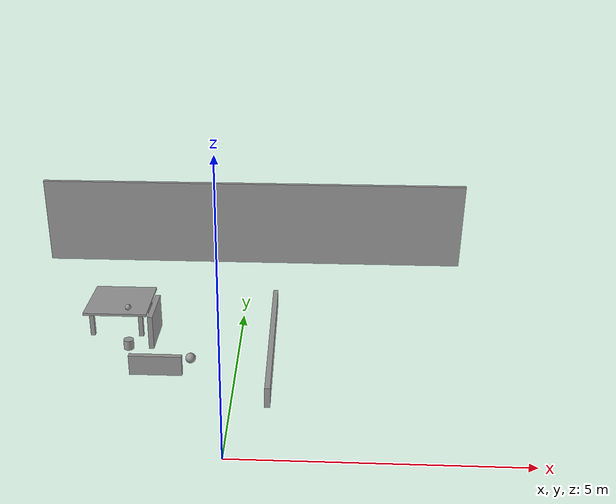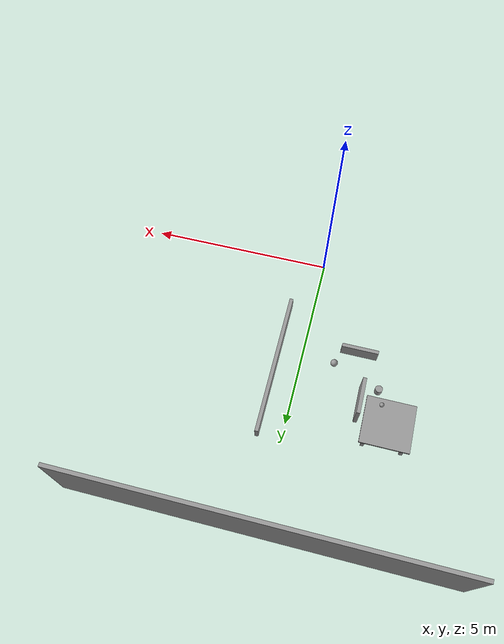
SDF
<sdf version="1.5">
 <world name="room1">
  <model name="wall2">
   <pose>0 7.95 1 0 0 0</pose>
   <static>1</static>
   <link name="link">
    <inertial>
     <mass>1</mass>
     <inertia><ixx>1</ixx><ixy>0</ixy><ixz>0</ixz><iyy>1</iyy><iyz>0</iyz><izz>1</izz></inertia>
    </inertial>
    <collision name="collision"><geometry><box><size>10 0.1 2</size></box></geometry></collision>
    <visual name="visual">
     <geometry><box><size>10 0.1 2</size></box></geometry>
     <material>
      <script><uri>file://media/materials/scripts/gazebo.material</uri><name>Gazebo/Grey</name></script>
     </material>
    </visual>
    <gravity>0</gravity>
   </link>
  </model>
  <model name="table_leg1">
   <pose>-2.045 4.045 0.25 0 0 0</pose>
   <static>1</static>
   <link name="link">
    <inertial>
     <mass>1</mass>
     <inertia><ixx>1</ixx><ixy>0</ixy><ixz>0</ixz><iyy>1</iyy><iyz>0</iyz><izz>1</izz></inertia>
    </inertial>
    <collision name="collision"><geometry><box><size>0.09 0.09 0.5</size></box></geometry></collision>
    <visual name="visual">
     <geometry><box><size>0.09 0.09 0.5</size></box></geometry>
     <material>
      <script><uri>file://media/materials/scripts/gazebo.material</uri><name>Gazebo/Grey</name></script>
     </material>
    </visual>
    <gravity>0</gravity>
   </link>
  </model>
  <model name="table_leg2">
   <pose>-3.045 4.045 0.25 0 0 0</pose>
   <static>1</static>
   <link name="link">
    <inertial>
     <mass>1</mass>
     <inertia><ixx>1</ixx><ixy>0</ixy><ixz>0</ixz><iyy>1</iyy><iyz>0</iyz><izz>1</izz></inertia>
    </inertial>
    <collision name="collision"><geometry><box><size>0.09 0.09 0.5</size></box></geometry></collision>
    <visual name="visual">
     <geometry><box><size>0.09 0.09 0.5</size></box></geometry>
     <material>
      <script><uri>file://media/materials/scripts/gazebo.material</uri><name>Gazebo/Grey</name></script>
     </material>
    </visual>
    <gravity>0</gravity>
   </link>
  </model>
  <model name="table_leg3">
   <pose>-2.045 5.045 0.25 0 0 0</pose>
   <static>1</static>
   <link name="link">
    <inertial>
     <mass>1</mass>
     <inertia><ixx>1</ixx><ixy>0</ixy><ixz>0</ixz><iyy>1</iyy><iyz>0</iyz><izz>1</izz></inertia>
    </inertial>
    <collision name="collision"><geometry><box><size>0.09 0.09 0.5</size></box></geometry></collision>
    <visual name="visual">
     <geometry><box><size>0.09 0.09 0.5</size></box></geometry>
     <material>
      <script><uri>file://media/materials/scripts/gazebo.material</uri><name>Gazebo/Grey</name></script>
     </material>
    </visual>
    <gravity>0</gravity>
   </link>
  </model>
  <model name="table_leg4">
   <pose>-3.045 5.045 0.25 0 0 0</pose>
   <static>1</static>
   <link name="link">
    <inertial>
     <mass>1</mass>
     <inertia><ixx>1</ixx><ixy>0</ixy><ixz>0</ixz><iyy>1</iyy><iyz>0</iyz><izz>1</izz></inertia>
    </inertial>
    <collision name="collision"><geometry><box><size>0.09 0.09 0.5</size></box></geometry></collision>
    <visual name="visual">
     <geometry><box><size>0.09 0.09 0.5</size></box></geometry>
     <material>
      <script><uri>file://media/materials/scripts/gazebo.material</uri><name>Gazebo/Grey</name></script>
     </material>
    </visual>
    <gravity>0</gravity>
   </link>
  </model>
  <model name="table_top">
   <pose>-2.545 4.545 0.525 0 0 0</pose>
   <static>1</static>
   <link name="link">
    <inertial>
     <mass>1</mass>
     <inertia><ixx>1</ixx><ixy>0</ixy><ixz>0</ixz><iyy>1</iyy><iyz>0</iyz><izz>1</izz></inertia>
    </inertial>
    <collision name="collision"><geometry><box><size>1.29 1.29 0.05</size></box></geometry></collision>
    <visual name="visual">
     <geometry><box><size>1.29 1.29 0.05</size></box></geometry>
     <material>
      <script><uri>file://media/materials/scripts/gazebo.material</uri><name>Gazebo/Grey</name></script>
     </material>
    </visual>
    <gravity>0</gravity>
   </link>
  </model>
  <model name="wall_small1">
   <pose>-1.75 4 0.35 0 0 0</pose>
   <static>1</static>
   <link name="link">
    <inertial>
     <mass>1</mass>
     <inertia><ixx>1</ixx><ixy>0</ixy><ixz>0</ixz><iyy>1</iyy><iyz>0</iyz><izz>1</izz></inertia>
    </inertial>
    <collision name="collision"><geometry><box><size>0.1 1 0.7</size></box></geometry></collision>
    <visual name="visual">
     <geometry><box><size>0.1 1 0.7</size></box></geometry>
     <material>
      <script><uri>file://media/materials/scripts/gazebo.material</uri><name>Gazebo/Grey</name></script>
     </material>
    </visual>
    <gravity>0</gravity>
   </link>
  </model>
  <model name="wall_small2">
   <pose>-1.5 2.55 0.2 0 0 0</pose>
   <static>1</static>
   <link name="link">
    <inertial>
     <mass>1</mass>
     <inertia><ixx>1</ixx><ixy>0</ixy><ixz>0</ixz><iyy>1</iyy><iyz>0</iyz><izz>1</izz></inertia>
    </inertial>
    <collision name="collision"><geometry><box><size>1 0.1 0.4</size></box></geometry></collision>
    <visual name="visual">
     <geometry><box><size>1 0.1 0.4</size></box></geometry>
     <material>
      <script><uri>file://media/materials/scripts/gazebo.material</uri><name>Gazebo/Grey</name></script>
     </material>
    </visual>
    <gravity>0</gravity>
   </link>
  </model>
  <model name="wall_small3">
   <pose>0.65 3.5 0.2 0 0 0</pose>
   <static>1</static>
   <link name="link">
    <inertial>
     <mass>1</mass>
     <inertia><ixx>1</ixx><ixy>0</ixy><ixz>0</ixz><iyy>1</iyy><iyz>0</iyz><izz>1</izz></inertia>
    </inertial>
    <collision name="collision"><geometry><box><size>0.1 4 0.4</size></box></geometry></collision>
    <visual name="visual">
     <geometry><box><size>0.1 4 0.4</size></box></geometry>
     <material>
      <script><uri>file://media/materials/scripts/gazebo.material</uri><name>Gazebo/Grey</name></script>
     </material>
    </visual>
    <gravity>0</gravity>
   </link>
  </model>
  <model name="sphereFloor2">
   <pose>-0.9 3 0.1 0 0 0</pose>
   <static>1</static>
   <link name="link">
    <inertial>
     <mass>1</mass>
     <inertia><ixx>1</ixx><ixy>0</ixy><ixz>0</ixz><iyy>1</iyy><iyz>0</iyz><izz>1</izz></inertia>
    </inertial>
    <collision name="collision"><geometry><sphere><radius>0.1</radius></sphere></geometry></collision>
    <visual name="visual">
     <geometry><sphere><radius>0.1</radius></sphere></geometry>
     <material>
      <script><uri>file://media/materials/scripts/gazebo.material</uri><name>Gazebo/Grey</name></script>
     </material>
    </visual>
    <gravity>0</gravity>
   </link>
  </model>
  <model name="sphereTable1">
   <pose>-2.3 4.1 0.61 0 0 0</pose>
   <static>1</static>
   <link name="link">
    <inertial>
     <mass>1</mass>
     <inertia><ixx>1</ixx><ixy>0</ixy><ixz>0</ixz><iyy>1</iyy><iyz>0</iyz><izz>1</izz></inertia>
    </inertial>
    <collision name="collision"><geometry><sphere><radius>0.06</radius></sphere></geometry></collision>
    <visual name="visual">
     <geometry><sphere><radius>0.06</radius></sphere></geometry>
     <material>
      <script><uri>file://media/materials/scripts/gazebo.material</uri><name>Gazebo/Grey</name></script>
     </material>
    </visual>
    <gravity>0</gravity>
   </link>
  </model>
  <model name="cylinderFloor5">
   <pose>-2.2 3.5 0.1 0 0 0</pose>
   <static>1</static>
   <link name="link">
    <inertial>
     <mass>1</mass>
     <inertia><ixx>1</ixx><ixy>0</ixy><ixz>0</ixz><iyy>1</iyy><iyz>0</iyz><izz>1</izz></inertia>
    </inertial>
    <collision name="collision">
     <geometry><cylinder><radius>0.1</radius><length>0.2</length></cylinder></geometry>
    </collision>
    <visual name="visual">
     <geometry><cylinder><radius>0.1</radius><length>0.2</length></cylinder></geometry>
     <material>
      <script><uri>file://media/materials/scripts/gazebo.material</uri><name>Gazebo/Grey</name></script>
     </material>
    </visual>
    <gravity>0</gravity>
   </link>
  </model>
 </world>
</sdf>
